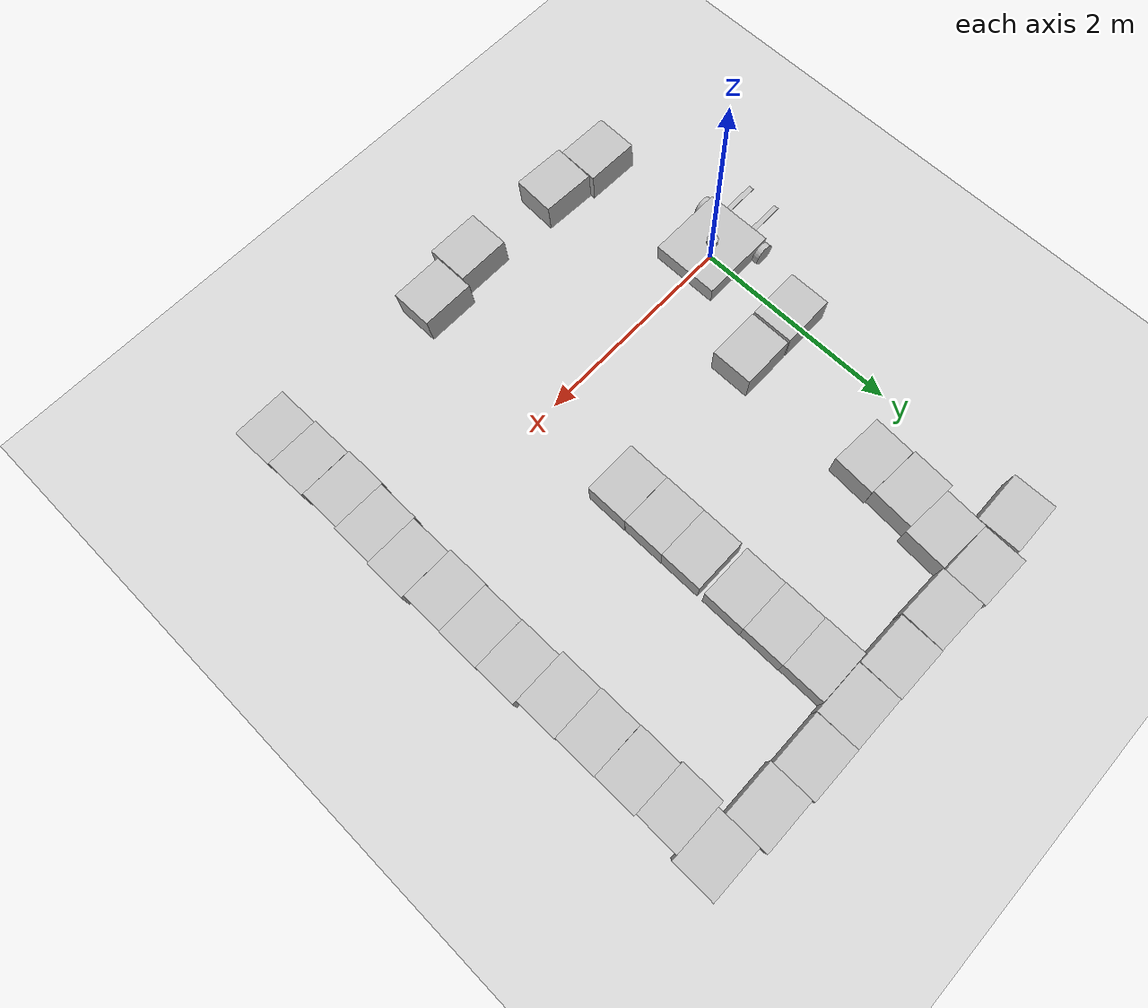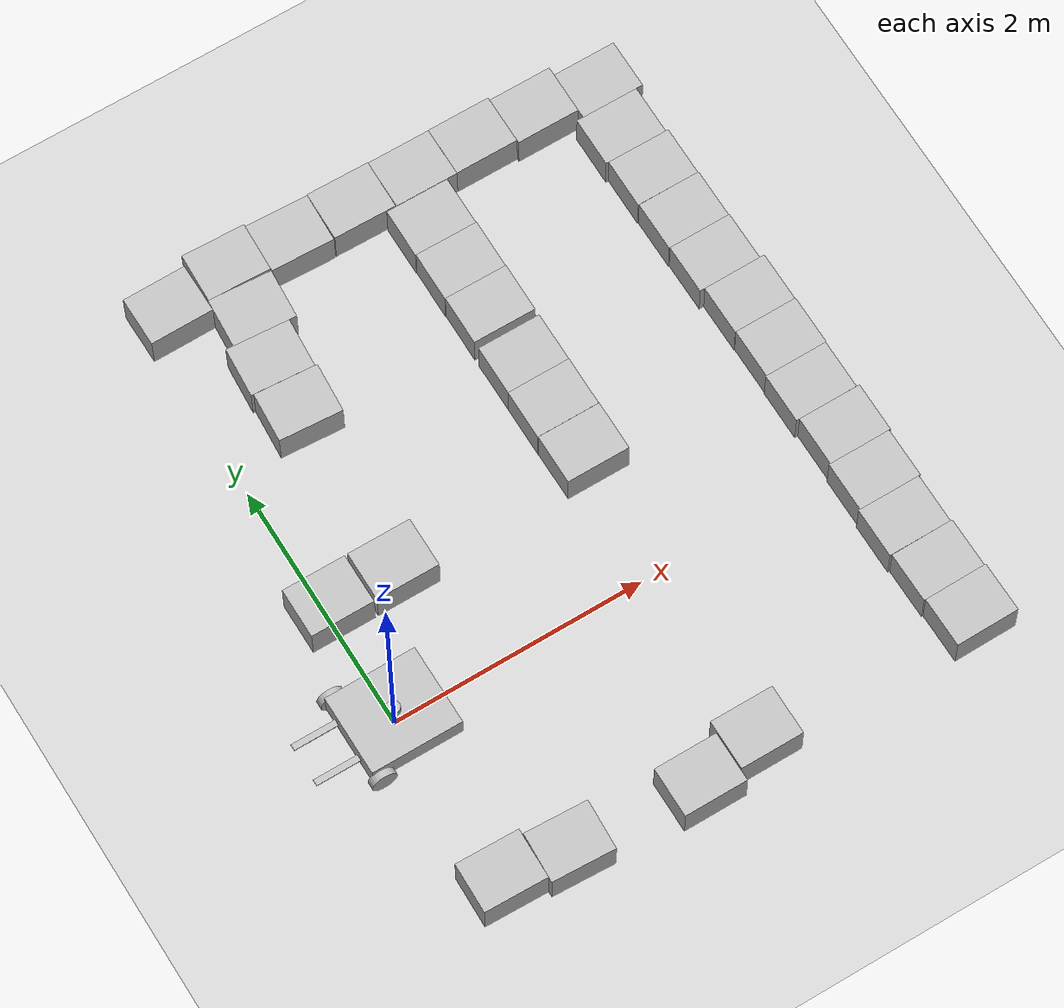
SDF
<sdf version="1.7">
 <world name="default">
  <model name="ground_plane">
   <static>1</static>
   <link name="link">
    <collision name="collision">
     <geometry><plane><normal>0 0 1</normal><size>100 100</size></plane></geometry>
     <surface><friction><ode><mu>100</mu><mu2>50</mu2></ode></friction></surface>
    </collision>
    <visual name="visual">
     <cast_shadows>0</cast_shadows>
     <geometry><plane><normal>0 0 1</normal><size>100 100</size></plane></geometry>
     <material>
      <script><uri>file://media/materials/scripts/gazebo.material</uri><name>Gazebo/Grey</name></script>
     </material>
    </visual>
   </link>
  </model>
  <model name="lgv">
   <link name="base_link">
    <inertial>
     <pose>0.006527 0 -0.002704 1.5708 -0 1.5708</pose>
     <mass>10.725</mass>
     <inertia>
      <ixx>0.476011</ixx>
      <ixy>1.73103e-18</ixy>
      <ixz>-2.64669e-18</ixz>
      <iyy>0.784563</iyy>
      <iyz>0.00611072</iyz>
      <izz>0.376002</izz>
     </inertia>
    </inertial>
    <collision name="base_link_collision"><geometry><box><size>0.72 0.64 0.18</size></box></geometry></collision>
    <collision name="base_link_fixed_joint_lump__front_caster_collision_1">
     <pose>0.14 0 -0.09 0 -0 0</pose>
     <geometry><sphere><radius>0.06</radius></sphere></geometry>
    </collision>
    <collision name="base_link_fixed_joint_lump__imu_link_collision_2">
     <pose>0 0 0.01 0 -0 0</pose>
     <geometry><box><size>0.1 0.1 0.1</size></box></geometry>
    </collision>
    <collision name="base_link_fixed_joint_lump__lidar_link_collision_3">
     <pose>0 0 0.12 0 -0 0</pose>
     <geometry><cylinder><length>0.055</length><radius>0.0508</radius></cylinder></geometry>
    </collision>
    <visual name="base_link_visual"><geometry><box><size>0.72 0.64 0.18</size></box></geometry></visual>
    <visual name="base_link_fixed_joint_lump__front_caster_visual_1">
     <pose>0.14 0 -0.09 0 -0 0</pose>
     <geometry><sphere><radius>0.06</radius></sphere></geometry>
    </visual>
    <visual name="base_link_fixed_joint_lump__dummyfork_l_link_visual_2">
     <pose>-0.54 0.15 0.01 0 -0 0</pose>
     <geometry><box><size>0.35 0.05 0.01</size></box></geometry>
    </visual>
    <visual name="base_link_fixed_joint_lump__dummyfork_r_link_visual_3">
     <pose>-0.54 -0.15 0.01 0 -0 0</pose>
     <geometry><box><size>0.35 0.05 0.01</size></box></geometry>
    </visual>
    <visual name="base_link_fixed_joint_lump__imu_link_visual_4">
     <pose>0 0 0.01 0 -0 0</pose>
     <geometry><box><size>0.1 0.1 0.1</size></box></geometry>
    </visual>
    <visual name="base_link_fixed_joint_lump__lidar_link_visual_5">
     <pose>0 0 0.12 0 -0 0</pose>
     <geometry><cylinder><length>0.055</length><radius>0.0508</radius></cylinder></geometry>
    </visual>
    <sensor name="imu_sensor" type="imu">
     <plugin name="imu_plugin" filename="libgazebo_ros_imu_sensor.so">
      <ros><remapping>~/out:=imu/data</remapping></ros>
      <initial_orientation_as_reference>0</initial_orientation_as_reference>
     </plugin>
     <always_on>1</always_on>
     <update_rate>100</update_rate>
     <visualize>1</visualize>
     <imu>
      <angular_velocity>
       <x>
        <noise type="gaussian">
         <mean>0</mean>
         <stddev>0.0002</stddev>
         <bias_mean>7.5e-06</bias_mean>
         <bias_stddev>8e-07</bias_stddev>
        </noise>
       </x>
       <y>
        <noise type="gaussian">
         <mean>0</mean>
         <stddev>0.0002</stddev>
         <bias_mean>7.5e-06</bias_mean>
         <bias_stddev>8e-07</bias_stddev>
        </noise>
       </y>
       <z>
        <noise type="gaussian">
         <mean>0</mean>
         <stddev>0.0002</stddev>
         <bias_mean>7.5e-06</bias_mean>
         <bias_stddev>8e-07</bias_stddev>
        </noise>
       </z>
      </angular_velocity>
      <linear_acceleration>
       <x>
        <noise type="gaussian">
         <mean>0</mean>
         <stddev>0.017</stddev>
         <bias_mean>0.1</bias_mean>
         <bias_stddev>0.001</bias_stddev>
        </noise>
       </x>
       <y>
        <noise type="gaussian">
         <mean>0</mean>
         <stddev>0.017</stddev>
         <bias_mean>0.1</bias_mean>
         <bias_stddev>0.001</bias_stddev>
        </noise>
       </y>
       <z>
        <noise type="gaussian">
         <mean>0</mean>
         <stddev>0.017</stddev>
         <bias_mean>0.1</bias_mean>
         <bias_stddev>0.001</bias_stddev>
        </noise>
       </z>
      </linear_acceleration>
     </imu>
     <pose>0 0 0.01 0 -0 0</pose>
    </sensor>
    <sensor name="lidar" type="ray">
     <always_on>1</always_on>
     <visualize>1</visualize>
     <update_rate>5</update_rate>
     <ray>
      <scan>
       <horizontal>
        <samples>360</samples>
        <resolution>1</resolution>
        <min_angle>0</min_angle>
        <max_angle>6.28</max_angle>
       </horizontal>
       <vertical><samples>1</samples><min_angle>0</min_angle><max_angle>0</max_angle></vertical>
      </scan>
      <range><min>0.12</min><max>3.5</max><resolution>0.015</resolution></range>
      <noise><type>gaussian</type><mean>0</mean><stddev>0.01</stddev></noise>
     </ray>
     <plugin name="scan" filename="libgazebo_ros_ray_sensor.so">
      <ros><remapping>~/out:=scan</remapping></ros>
      <output_type>sensor_msgs/LaserScan</output_type>
      <frame_name>lidar_link</frame_name>
     </plugin>
     <pose>0 0 0.12 0 -0 0</pose>
    </sensor>
   </link>
   <joint name="drivewhl_l_joint" type="revolute">
    <pose relative_to="base_link">-0.295 0.345 -0.05 0 -0 0</pose>
    <parent>base_link</parent>
    <child>drivewhl_l_link</child>
    <axis>
     <xyz>0 1 0</xyz>
     <limit><lower>-1e+16</lower><upper>1e+16</upper></limit>
     <dynamics><spring_reference>0</spring_reference><spring_stiffness>0</spring_stiffness></dynamics>
    </axis>
   </joint>
   <link name="drivewhl_l_link">
    <pose relative_to="drivewhl_l_joint">0 0 0 0 -0 0</pose>
    <inertial>
     <pose>0 0 0 1.5708 -0 0</pose>
     <mass>5</mass>
     <inertia><ixx>0.014</ixx><ixy>0</ixy><ixz>0</ixz><iyy>0.014</iyy><iyz>0</iyz><izz>0.025</izz></inertia>
    </inertial>
    <collision name="drivewhl_l_link_collision">
     <pose>0 0 0 1.5708 -0 0</pose>
     <geometry><cylinder><length>0.06</length><radius>0.1</radius></cylinder></geometry>
    </collision>
    <visual name="drivewhl_l_link_visual">
     <pose>0 0 0 1.5708 -0 0</pose>
     <geometry><cylinder><length>0.06</length><radius>0.1</radius></cylinder></geometry>
    </visual>
   </link>
   <joint name="drivewhl_r_joint" type="revolute">
    <pose relative_to="base_link">-0.295 -0.345 -0.05 0 -0 0</pose>
    <parent>base_link</parent>
    <child>drivewhl_r_link</child>
    <axis>
     <xyz>0 1 0</xyz>
     <limit><lower>-1e+16</lower><upper>1e+16</upper></limit>
     <dynamics><spring_reference>0</spring_reference><spring_stiffness>0</spring_stiffness></dynamics>
    </axis>
   </joint>
   <link name="drivewhl_r_link">
    <pose relative_to="drivewhl_r_joint">0 0 0 0 -0 0</pose>
    <inertial>
     <pose>0 0 0 1.5708 -0 0</pose>
     <mass>5</mass>
     <inertia><ixx>0.014</ixx><ixy>0</ixy><ixz>0</ixz><iyy>0.014</iyy><iyz>0</iyz><izz>0.025</izz></inertia>
    </inertial>
    <collision name="drivewhl_r_link_collision">
     <pose>0 0 0 1.5708 -0 0</pose>
     <geometry><cylinder><length>0.06</length><radius>0.1</radius></cylinder></geometry>
    </collision>
    <visual name="drivewhl_r_link_visual">
     <pose>0 0 0 1.5708 -0 0</pose>
     <geometry><cylinder><length>0.06</length><radius>0.1</radius></cylinder></geometry>
    </visual>
   </link>
   <static>0</static>
   <plugin name="Plugin_diff_drive" filename="libgazebo_ros_diff_drive.so">
    <update_rate>30</update_rate>
    <command_topic>cmd_vel</command_topic>
    <left_joint>drivewhl_l_joint</left_joint>
    <right_joint>drivewhl_r_joint</right_joint>
    <wheel_separation>0.75</wheel_separation>
    <wheel_diameter>0.2</wheel_diameter>
    <max_wheel_torque>100</max_wheel_torque>
    <max_wheel_acceleration>1.5</max_wheel_acceleration>
    <publish_odom>1</publish_odom>
    <publish_odom_tf>0</publish_odom_tf>
    <publish_wheel_tf>0</publish_wheel_tf>
    <odometry_topic>odom</odometry_topic>
    <odometry_frame>odom</odometry_frame>
    <robot_base_frame>base_link</robot_base_frame>
    <odometry_source>1</odometry_source>
    <ros><remapping>odom:=wheel/odometry</remapping></ros>
   </plugin>
   <plugin name="Plugin_joint_state_publisher" filename="libgazebo_ros_joint_state_publisher.so">
    <ros><remapping>~/out:=joint_states</remapping></ros>
    <update_rate>30</update_rate>
    <joint_name>drivewhl_l_joint</joint_name>
    <joint_name>drivewhl_r_joint</joint_name>
   </plugin>
   <pose>-5.2e-05 9e-05 0.15 0 -0 0.001111</pose>
  </model>
  <model name="cardboard_box_clone">
   <pose>0.036399 0.936347 0.149 0 -0 0</pose>
   <link name="link">
    <inertial>
     <mass>2</mass>
     <inertia>
      <ixx>0.0416667</ixx>
      <ixy>0</ixy>
      <ixz>0</ixz>
      <iyy>0.0566667</iyy>
      <iyz>0</iyz>
      <izz>0.0683333</izz>
     </inertia>
    </inertial>
    <collision name="collision">
     <geometry><box><size>0.5 0.4 0.3</size></box></geometry>
     <surface>
      <friction><ode><mu>1</mu><mu2>1</mu2></ode></friction>
      <contact><ode><kp>1e+07</kp><kd>1</kd><min_depth>0.001</min_depth><max_vel>0.1</max_vel></ode></contact>
     </surface>
    </collision>
    <visual name="visual">
     <pose>0 0 -0.15 0 -0 0</pose>
     <geometry>
      <mesh><uri>model://cardboard_box/meshes/cardboard_box.dae</uri><scale>1.25932 1.00745 0.755591</scale></mesh>
     </geometry>
    </visual>
   </link>
  </model>
  <model name="cardboard_box_clone_0">
   <pose>0.559122 0.936933 0.149 0 -0 0</pose>
   <link name="link">
    <inertial>
     <mass>2</mass>
     <inertia>
      <ixx>0.0416667</ixx>
      <ixy>0</ixy>
      <ixz>0</ixz>
      <iyy>0.0566667</iyy>
      <iyz>0</iyz>
      <izz>0.0683333</izz>
     </inertia>
    </inertial>
    <collision name="collision">
     <geometry><box><size>0.5 0.4 0.3</size></box></geometry>
     <surface>
      <friction><ode><mu>1</mu><mu2>1</mu2></ode></friction>
      <contact><ode><kp>1e+07</kp><kd>1</kd><min_depth>0.001</min_depth><max_vel>0.1</max_vel></ode></contact>
     </surface>
    </collision>
    <visual name="visual">
     <pose>0 0 -0.15 0 -0 0</pose>
     <geometry>
      <mesh><uri>model://cardboard_box/meshes/cardboard_box.dae</uri><scale>1.25932 1.00745 0.755591</scale></mesh>
     </geometry>
    </visual>
   </link>
  </model>
  <model name="cardboard_box_clone_11">
   <pose>0.018354 -1.39647 0.149 0 0 -0.020636</pose>
   <link name="link">
    <inertial>
     <mass>2</mass>
     <inertia>
      <ixx>0.0416667</ixx>
      <ixy>0</ixy>
      <ixz>0</ixz>
      <iyy>0.0566667</iyy>
      <iyz>0</iyz>
      <izz>0.0683333</izz>
     </inertia>
    </inertial>
    <collision name="collision">
     <geometry><box><size>0.5 0.4 0.3</size></box></geometry>
     <surface>
      <friction><ode><mu>1</mu><mu2>1</mu2></ode></friction>
      <contact><ode><kp>1e+07</kp><kd>1</kd><min_depth>0.001</min_depth><max_vel>0.1</max_vel></ode></contact>
     </surface>
    </collision>
    <visual name="visual">
     <pose>0 0 -0.15 0 -0 0</pose>
     <geometry>
      <mesh><uri>model://cardboard_box/meshes/cardboard_box.dae</uri><scale>1.25932 1.00745 0.755591</scale></mesh>
     </geometry>
    </visual>
   </link>
  </model>
  <model name="cardboard_box_clone_12">
   <pose>0.520326 -1.45543 0.149 0 -0 -0.043511</pose>
   <link name="link">
    <inertial>
     <mass>2</mass>
     <inertia>
      <ixx>0.0416667</ixx>
      <ixy>0</ixy>
      <ixz>0</ixz>
      <iyy>0.0566667</iyy>
      <iyz>0</iyz>
      <izz>0.0683333</izz>
     </inertia>
    </inertial>
    <collision name="collision">
     <geometry><box><size>0.5 0.4 0.3</size></box></geometry>
     <surface>
      <friction><ode><mu>1</mu><mu2>1</mu2></ode></friction>
      <contact><ode><kp>1e+07</kp><kd>1</kd><min_depth>0.001</min_depth><max_vel>0.1</max_vel></ode></contact>
     </surface>
    </collision>
    <visual name="visual">
     <pose>0 0 -0.15 0 -0 0</pose>
     <geometry>
      <mesh><uri>model://cardboard_box/meshes/cardboard_box.dae</uri><scale>1.25932 1.00745 0.755591</scale></mesh>
     </geometry>
    </visual>
   </link>
  </model>
  <model name="cardboard_box_clone_13">
   <pose>3.77819 -1.43207 0.149 0 -0 0.012439</pose>
   <link name="link">
    <inertial>
     <mass>2</mass>
     <inertia>
      <ixx>0.0416667</ixx>
      <ixy>0</ixy>
      <ixz>0</ixz>
      <iyy>0.0566667</iyy>
      <iyz>0</iyz>
      <izz>0.0683333</izz>
     </inertia>
    </inertial>
    <collision name="collision">
     <geometry><box><size>0.5 0.4 0.3</size></box></geometry>
     <surface>
      <friction><ode><mu>1</mu><mu2>1</mu2></ode></friction>
      <contact><ode><kp>1e+07</kp><kd>1</kd><min_depth>0.001</min_depth><max_vel>0.1</max_vel></ode></contact>
     </surface>
    </collision>
    <visual name="visual">
     <pose>0 0 -0.15 0 -0 0</pose>
     <geometry>
      <mesh><uri>model://cardboard_box/meshes/cardboard_box.dae</uri><scale>1.25932 1.00745 0.755591</scale></mesh>
     </geometry>
    </visual>
   </link>
  </model>
  <model name="cardboard_box_clone_14">
   <pose>3.76152 -1.03289 0.149 0 -0 0.012281</pose>
   <link name="link">
    <inertial>
     <mass>2</mass>
     <inertia>
      <ixx>0.0416667</ixx>
      <ixy>0</ixy>
      <ixz>0</ixz>
      <iyy>0.0566667</iyy>
      <iyz>0</iyz>
      <izz>0.0683333</izz>
     </inertia>
    </inertial>
    <collision name="collision">
     <geometry><box><size>0.5 0.4 0.3</size></box></geometry>
     <surface>
      <friction><ode><mu>1</mu><mu2>1</mu2></ode></friction>
      <contact><ode><kp>1e+07</kp><kd>1</kd><min_depth>0.001</min_depth><max_vel>0.1</max_vel></ode></contact>
     </surface>
    </collision>
    <visual name="visual">
     <pose>0 0 -0.15 0 -0 0</pose>
     <geometry>
      <mesh><uri>model://cardboard_box/meshes/cardboard_box.dae</uri><scale>1.25932 1.00745 0.755591</scale></mesh>
     </geometry>
    </visual>
   </link>
  </model>
  <model name="cardboard_box_clone_15">
   <pose>3.74406 -0.631957 0.149 0 -0 0.004283</pose>
   <link name="link">
    <inertial>
     <mass>2</mass>
     <inertia>
      <ixx>0.0416667</ixx>
      <ixy>0</ixy>
      <ixz>0</ixz>
      <iyy>0.0566667</iyy>
      <iyz>0</iyz>
      <izz>0.0683333</izz>
     </inertia>
    </inertial>
    <collision name="collision">
     <geometry><box><size>0.5 0.4 0.3</size></box></geometry>
     <surface>
      <friction><ode><mu>1</mu><mu2>1</mu2></ode></friction>
      <contact><ode><kp>1e+07</kp><kd>1</kd><min_depth>0.001</min_depth><max_vel>0.1</max_vel></ode></contact>
     </surface>
    </collision>
    <visual name="visual">
     <pose>0 0 -0.15 0 -0 0</pose>
     <geometry>
      <mesh><uri>model://cardboard_box/meshes/cardboard_box.dae</uri><scale>1.25932 1.00745 0.755591</scale></mesh>
     </geometry>
    </visual>
   </link>
  </model>
  <model name="cardboard_box_clone_16">
   <pose>3.75626 -0.232679 0.149 0 -0 0.004095</pose>
   <link name="link">
    <inertial>
     <mass>2</mass>
     <inertia>
      <ixx>0.0416667</ixx>
      <ixy>0</ixy>
      <ixz>0</ixz>
      <iyy>0.0566667</iyy>
      <iyz>0</iyz>
      <izz>0.0683333</izz>
     </inertia>
    </inertial>
    <collision name="collision">
     <geometry><box><size>0.5 0.4 0.3</size></box></geometry>
     <surface>
      <friction><ode><mu>1</mu><mu2>1</mu2></ode></friction>
      <contact><ode><kp>1e+07</kp><kd>1</kd><min_depth>0.001</min_depth><max_vel>0.1</max_vel></ode></contact>
     </surface>
    </collision>
    <visual name="visual">
     <pose>0 0 -0.15 0 -0 0</pose>
     <geometry>
      <mesh><uri>model://cardboard_box/meshes/cardboard_box.dae</uri><scale>1.25932 1.00745 0.755591</scale></mesh>
     </geometry>
    </visual>
   </link>
  </model>
  <model name="cardboard_box_clone_17">
   <pose>3.76732 0.166908 0.149 0 -0 0.002251</pose>
   <link name="link">
    <inertial>
     <mass>2</mass>
     <inertia>
      <ixx>0.0416667</ixx>
      <ixy>0</ixy>
      <ixz>0</ixz>
      <iyy>0.0566667</iyy>
      <iyz>0</iyz>
      <izz>0.0683333</izz>
     </inertia>
    </inertial>
    <collision name="collision">
     <geometry><box><size>0.5 0.4 0.3</size></box></geometry>
     <surface>
      <friction><ode><mu>1</mu><mu2>1</mu2></ode></friction>
      <contact><ode><kp>1e+07</kp><kd>1</kd><min_depth>0.001</min_depth><max_vel>0.1</max_vel></ode></contact>
     </surface>
    </collision>
    <visual name="visual">
     <pose>0 0 -0.15 0 -0 0</pose>
     <geometry>
      <mesh><uri>model://cardboard_box/meshes/cardboard_box.dae</uri><scale>1.25932 1.00745 0.755591</scale></mesh>
     </geometry>
    </visual>
   </link>
  </model>
  <model name="cardboard_box_clone_18">
   <pose>3.74224 0.567245 0.149 0 -0 0.004212</pose>
   <link name="link">
    <inertial>
     <mass>2</mass>
     <inertia>
      <ixx>0.0416667</ixx>
      <ixy>0</ixy>
      <ixz>0</ixz>
      <iyy>0.0566667</iyy>
      <iyz>0</iyz>
      <izz>0.0683333</izz>
     </inertia>
    </inertial>
    <collision name="collision">
     <geometry><box><size>0.5 0.4 0.3</size></box></geometry>
     <surface>
      <friction><ode><mu>1</mu><mu2>1</mu2></ode></friction>
      <contact><ode><kp>1e+07</kp><kd>1</kd><min_depth>0.001</min_depth><max_vel>0.1</max_vel></ode></contact>
     </surface>
    </collision>
    <visual name="visual">
     <pose>0 0 -0.15 0 -0 0</pose>
     <geometry>
      <mesh><uri>model://cardboard_box/meshes/cardboard_box.dae</uri><scale>1.25932 1.00745 0.755591</scale></mesh>
     </geometry>
    </visual>
   </link>
  </model>
  <model name="cardboard_box_clone_19">
   <pose>3.74645 0.967047 0.149 0 -0 0.005082</pose>
   <link name="link">
    <inertial>
     <mass>2</mass>
     <inertia>
      <ixx>0.0416667</ixx>
      <ixy>0</ixy>
      <ixz>0</ixz>
      <iyy>0.0566667</iyy>
      <iyz>0</iyz>
      <izz>0.0683333</izz>
     </inertia>
    </inertial>
    <collision name="collision">
     <geometry><box><size>0.5 0.4 0.3</size></box></geometry>
     <surface>
      <friction><ode><mu>1</mu><mu2>1</mu2></ode></friction>
      <contact><ode><kp>1e+07</kp><kd>1</kd><min_depth>0.001</min_depth><max_vel>0.1</max_vel></ode></contact>
     </surface>
    </collision>
    <visual name="visual">
     <pose>0 0 -0.15 0 -0 0</pose>
     <geometry>
      <mesh><uri>model://cardboard_box/meshes/cardboard_box.dae</uri><scale>1.25932 1.00745 0.755591</scale></mesh>
     </geometry>
    </visual>
   </link>
  </model>
  <model name="cardboard_box_clone_20">
   <pose>3.73943 1.36651 0.149 0 -0 0.006875</pose>
   <link name="link">
    <inertial>
     <mass>2</mass>
     <inertia>
      <ixx>0.0416667</ixx>
      <ixy>0</ixy>
      <ixz>0</ixz>
      <iyy>0.0566667</iyy>
      <iyz>0</iyz>
      <izz>0.0683333</izz>
     </inertia>
    </inertial>
    <collision name="collision">
     <geometry><box><size>0.5 0.4 0.3</size></box></geometry>
     <surface>
      <friction><ode><mu>1</mu><mu2>1</mu2></ode></friction>
      <contact><ode><kp>1e+07</kp><kd>1</kd><min_depth>0.001</min_depth><max_vel>0.1</max_vel></ode></contact>
     </surface>
    </collision>
    <visual name="visual">
     <pose>0 0 -0.15 0 -0 0</pose>
     <geometry>
      <mesh><uri>model://cardboard_box/meshes/cardboard_box.dae</uri><scale>1.25932 1.00745 0.755591</scale></mesh>
     </geometry>
    </visual>
   </link>
  </model>
  <model name="cardboard_box_clone_21">
   <pose>2.14051 1.00085 0.149 0 -0 0</pose>
   <link name="link">
    <inertial>
     <mass>2</mass>
     <inertia>
      <ixx>0.0416667</ixx>
      <ixy>0</ixy>
      <ixz>0</ixz>
      <iyy>0.0566667</iyy>
      <iyz>0</iyz>
      <izz>0.0683333</izz>
     </inertia>
    </inertial>
    <collision name="collision">
     <geometry><box><size>0.5 0.4 0.3</size></box></geometry>
     <surface>
      <friction><ode><mu>1</mu><mu2>1</mu2></ode></friction>
      <contact><ode><kp>1e+07</kp><kd>1</kd><min_depth>0.001</min_depth><max_vel>0.1</max_vel></ode></contact>
     </surface>
    </collision>
    <visual name="visual">
     <pose>0 0 -0.15 0 -0 0</pose>
     <geometry>
      <mesh><uri>model://cardboard_box/meshes/cardboard_box.dae</uri><scale>1.25932 1.00745 0.755591</scale></mesh>
     </geometry>
    </visual>
   </link>
  </model>
  <model name="cardboard_box_clone_22">
   <pose>2.13804 1.4019 0.149 0 -0 0</pose>
   <link name="link">
    <inertial>
     <mass>2</mass>
     <inertia>
      <ixx>0.0416667</ixx>
      <ixy>0</ixy>
      <ixz>0</ixz>
      <iyy>0.0566667</iyy>
      <iyz>0</iyz>
      <izz>0.0683333</izz>
     </inertia>
    </inertial>
    <collision name="collision">
     <geometry><box><size>0.5 0.4 0.3</size></box></geometry>
     <surface>
      <friction><ode><mu>1</mu><mu2>1</mu2></ode></friction>
      <contact><ode><kp>1e+07</kp><kd>1</kd><min_depth>0.001</min_depth><max_vel>0.1</max_vel></ode></contact>
     </surface>
    </collision>
    <visual name="visual">
     <pose>0 0 -0.15 0 -0 0</pose>
     <geometry>
      <mesh><uri>model://cardboard_box/meshes/cardboard_box.dae</uri><scale>1.25932 1.00745 0.755591</scale></mesh>
     </geometry>
    </visual>
   </link>
  </model>
  <model name="cardboard_box_clone_23">
   <pose>2.13738 1.80107 0.149 0 -0 2e-06</pose>
   <link name="link">
    <inertial>
     <mass>2</mass>
     <inertia>
      <ixx>0.0416667</ixx>
      <ixy>0</ixy>
      <ixz>0</ixz>
      <iyy>0.0566667</iyy>
      <iyz>0</iyz>
      <izz>0.0683333</izz>
     </inertia>
    </inertial>
    <collision name="collision">
     <geometry><box><size>0.5 0.4 0.3</size></box></geometry>
     <surface>
      <friction><ode><mu>1</mu><mu2>1</mu2></ode></friction>
      <contact><ode><kp>1e+07</kp><kd>1</kd><min_depth>0.001</min_depth><max_vel>0.1</max_vel></ode></contact>
     </surface>
    </collision>
    <visual name="visual">
     <pose>0 0 -0.15 0 -0 0</pose>
     <geometry>
      <mesh><uri>model://cardboard_box/meshes/cardboard_box.dae</uri><scale>1.25932 1.00745 0.755591</scale></mesh>
     </geometry>
    </visual>
   </link>
  </model>
  <model name="cardboard_box_clone_24">
   <pose>2.13776 2.25388 0.149 -0 -0 -0.003863</pose>
   <link name="link">
    <inertial>
     <mass>2</mass>
     <inertia>
      <ixx>0.0416667</ixx>
      <ixy>0</ixy>
      <ixz>0</ixz>
      <iyy>0.0566667</iyy>
      <iyz>0</iyz>
      <izz>0.0683333</izz>
     </inertia>
    </inertial>
    <collision name="collision">
     <geometry><box><size>0.5 0.4 0.3</size></box></geometry>
     <surface>
      <friction><ode><mu>1</mu><mu2>1</mu2></ode></friction>
      <contact><ode><kp>1e+07</kp><kd>1</kd><min_depth>0.001</min_depth><max_vel>0.1</max_vel></ode></contact>
     </surface>
    </collision>
    <visual name="visual">
     <pose>0 0 -0.15 0 -0 0</pose>
     <geometry>
      <mesh><uri>model://cardboard_box/meshes/cardboard_box.dae</uri><scale>1.25932 1.00745 0.755591</scale></mesh>
     </geometry>
    </visual>
   </link>
  </model>
  <model name="cardboard_box_clone_25">
   <pose>2.13582 2.65368 0.149 0 -0 -0.004025</pose>
   <link name="link">
    <inertial>
     <mass>2</mass>
     <inertia>
      <ixx>0.0416667</ixx>
      <ixy>0</ixy>
      <ixz>0</ixz>
      <iyy>0.0566667</iyy>
      <iyz>0</iyz>
      <izz>0.0683333</izz>
     </inertia>
    </inertial>
    <collision name="collision">
     <geometry><box><size>0.5 0.4 0.3</size></box></geometry>
     <surface>
      <friction><ode><mu>1</mu><mu2>1</mu2></ode></friction>
      <contact><ode><kp>1e+07</kp><kd>1</kd><min_depth>0.001</min_depth><max_vel>0.1</max_vel></ode></contact>
     </surface>
    </collision>
    <visual name="visual">
     <pose>0 0 -0.15 0 -0 0</pose>
     <geometry>
      <mesh><uri>model://cardboard_box/meshes/cardboard_box.dae</uri><scale>1.25932 1.00745 0.755591</scale></mesh>
     </geometry>
    </visual>
   </link>
  </model>
  <model name="cardboard_box_clone_26">
   <pose>3.69918 1.76607 0.149 0 -0 0.006857</pose>
   <link name="link">
    <inertial>
     <mass>2</mass>
     <inertia>
      <ixx>0.0416667</ixx>
      <ixy>0</ixy>
      <ixz>0</ixz>
      <iyy>0.0566667</iyy>
      <iyz>0</iyz>
      <izz>0.0683333</izz>
     </inertia>
    </inertial>
    <collision name="collision">
     <geometry><box><size>0.5 0.4 0.3</size></box></geometry>
     <surface>
      <friction><ode><mu>1</mu><mu2>1</mu2></ode></friction>
      <contact><ode><kp>1e+07</kp><kd>1</kd><min_depth>0.001</min_depth><max_vel>0.1</max_vel></ode></contact>
     </surface>
    </collision>
    <visual name="visual">
     <pose>0 0 -0.15 0 -0 0</pose>
     <geometry>
      <mesh><uri>model://cardboard_box/meshes/cardboard_box.dae</uri><scale>1.25932 1.00745 0.755591</scale></mesh>
     </geometry>
    </visual>
   </link>
  </model>
  <model name="cardboard_box_clone_27">
   <pose>3.69113 2.16582 0.149 0 -0 0.006238</pose>
   <link name="link">
    <inertial>
     <mass>2</mass>
     <inertia>
      <ixx>0.0416667</ixx>
      <ixy>0</ixy>
      <ixz>0</ixz>
      <iyy>0.0566667</iyy>
      <iyz>0</iyz>
      <izz>0.0683333</izz>
     </inertia>
    </inertial>
    <collision name="collision">
     <geometry><box><size>0.5 0.4 0.3</size></box></geometry>
     <surface>
      <friction><ode><mu>1</mu><mu2>1</mu2></ode></friction>
      <contact><ode><kp>1e+07</kp><kd>1</kd><min_depth>0.001</min_depth><max_vel>0.1</max_vel></ode></contact>
     </surface>
    </collision>
    <visual name="visual">
     <pose>0 0 -0.15 0 -0 0</pose>
     <geometry>
      <mesh><uri>model://cardboard_box/meshes/cardboard_box.dae</uri><scale>1.25932 1.00745 0.755591</scale></mesh>
     </geometry>
    </visual>
   </link>
  </model>
  <model name="cardboard_box_clone_28">
   <pose>3.68402 2.56636 0.148999 1e-06 -0 -8e-05</pose>
   <link name="link">
    <inertial>
     <mass>2</mass>
     <inertia>
      <ixx>0.0416667</ixx>
      <ixy>0</ixy>
      <ixz>0</ixz>
      <iyy>0.0566667</iyy>
      <iyz>0</iyz>
      <izz>0.0683333</izz>
     </inertia>
    </inertial>
    <collision name="collision">
     <geometry><box><size>0.5 0.4 0.3</size></box></geometry>
     <surface>
      <friction><ode><mu>1</mu><mu2>1</mu2></ode></friction>
      <contact><ode><kp>1e+07</kp><kd>1</kd><min_depth>0.001</min_depth><max_vel>0.1</max_vel></ode></contact>
     </surface>
    </collision>
    <visual name="visual">
     <pose>0 0 -0.15 0 -0 0</pose>
     <geometry>
      <mesh><uri>model://cardboard_box/meshes/cardboard_box.dae</uri><scale>1.25932 1.00745 0.755591</scale></mesh>
     </geometry>
    </visual>
   </link>
  </model>
  <model name="cardboard_box_clone_29">
   <pose>3.66358 2.96578 0.149 -1e-06 0 -0.001748</pose>
   <link name="link">
    <inertial>
     <mass>2</mass>
     <inertia>
      <ixx>0.0416667</ixx>
      <ixy>0</ixy>
      <ixz>0</ixz>
      <iyy>0.0566667</iyy>
      <iyz>0</iyz>
      <izz>0.0683333</izz>
     </inertia>
    </inertial>
    <collision name="collision">
     <geometry><box><size>0.5 0.4 0.3</size></box></geometry>
     <surface>
      <friction><ode><mu>1</mu><mu2>1</mu2></ode></friction>
      <contact><ode><kp>1e+07</kp><kd>1</kd><min_depth>0.001</min_depth><max_vel>0.1</max_vel></ode></contact>
     </surface>
    </collision>
    <visual name="visual">
     <pose>0 0 -0.15 0 -0 0</pose>
     <geometry>
      <mesh><uri>model://cardboard_box/meshes/cardboard_box.dae</uri><scale>1.25932 1.00745 0.755591</scale></mesh>
     </geometry>
    </visual>
   </link>
  </model>
  <model name="cardboard_box_clone_30">
   <pose>3.71773 3.36529 0.149 -0 -0 -0.000217</pose>
   <link name="link">
    <inertial>
     <mass>2</mass>
     <inertia>
      <ixx>0.0416667</ixx>
      <ixy>0</ixy>
      <ixz>0</ixz>
      <iyy>0.0566667</iyy>
      <iyz>0</iyz>
      <izz>0.0683333</izz>
     </inertia>
    </inertial>
    <collision name="collision">
     <geometry><box><size>0.5 0.4 0.3</size></box></geometry>
     <surface>
      <friction><ode><mu>1</mu><mu2>1</mu2></ode></friction>
      <contact><ode><kp>1e+07</kp><kd>1</kd><min_depth>0.001</min_depth><max_vel>0.1</max_vel></ode></contact>
     </surface>
    </collision>
    <visual name="visual">
     <pose>0 0 -0.15 0 -0 0</pose>
     <geometry>
      <mesh><uri>model://cardboard_box/meshes/cardboard_box.dae</uri><scale>1.25932 1.00745 0.755591</scale></mesh>
     </geometry>
    </visual>
   </link>
  </model>
  <model name="cardboard_box_clone_1_clone">
   <pose>2.13326 3.05286 0.149 0 0 -0.003403</pose>
   <link name="link">
    <inertial>
     <mass>2</mass>
     <inertia>
      <ixx>0.0416667</ixx>
      <ixy>0</ixy>
      <ixz>0</ixz>
      <iyy>0.0566667</iyy>
      <iyz>0</iyz>
      <izz>0.0683333</izz>
     </inertia>
    </inertial>
    <collision name="collision">
     <geometry><box><size>0.5 0.4 0.3</size></box></geometry>
     <surface>
      <friction><ode><mu>1</mu><mu2>1</mu2></ode></friction>
      <contact><ode><kp>1e+07</kp><kd>1</kd><min_depth>0.001</min_depth><max_vel>0.1</max_vel></ode></contact>
     </surface>
    </collision>
    <visual name="visual">
     <pose>0 0 -0.15 0 -0 0</pose>
     <geometry>
      <mesh><uri>model://cardboard_box/meshes/cardboard_box.dae</uri><scale>1.25932 1.00745 0.755591</scale></mesh>
     </geometry>
    </visual>
   </link>
  </model>
  <model name="cardboard_box_clone_1_clone_0">
   <pose>2.21822 3.45523 0.149 0 -0 -0.00354</pose>
   <link name="link">
    <inertial>
     <mass>2</mass>
     <inertia>
      <ixx>0.0416667</ixx>
      <ixy>0</ixy>
      <ixz>0</ixz>
      <iyy>0.0566667</iyy>
      <iyz>0</iyz>
      <izz>0.0683333</izz>
     </inertia>
    </inertial>
    <collision name="collision">
     <geometry><box><size>0.5 0.4 0.3</size></box></geometry>
     <surface>
      <friction><ode><mu>1</mu><mu2>1</mu2></ode></friction>
      <contact><ode><kp>1e+07</kp><kd>1</kd><min_depth>0.001</min_depth><max_vel>0.1</max_vel></ode></contact>
     </surface>
    </collision>
    <visual name="visual">
     <pose>0 0 -0.15 0 -0 0</pose>
     <geometry>
      <mesh><uri>model://cardboard_box/meshes/cardboard_box.dae</uri><scale>1.25932 1.00745 0.755591</scale></mesh>
     </geometry>
    </visual>
   </link>
  </model>
  <model name="cardboard_box_clone_1_clone_1">
   <pose>2.71851 3.45625 0.149 0 -0 0.000271</pose>
   <link name="link">
    <inertial>
     <mass>2</mass>
     <inertia>
      <ixx>0.0416667</ixx>
      <ixy>0</ixy>
      <ixz>0</ixz>
      <iyy>0.0566667</iyy>
      <iyz>0</iyz>
      <izz>0.0683333</izz>
     </inertia>
    </inertial>
    <collision name="collision">
     <geometry><box><size>0.5 0.4 0.3</size></box></geometry>
     <surface>
      <friction><ode><mu>1</mu><mu2>1</mu2></ode></friction>
      <contact><ode><kp>1e+07</kp><kd>1</kd><min_depth>0.001</min_depth><max_vel>0.1</max_vel></ode></contact>
     </surface>
    </collision>
    <visual name="visual">
     <pose>0 0 -0.15 0 -0 0</pose>
     <geometry>
      <mesh><uri>model://cardboard_box/meshes/cardboard_box.dae</uri><scale>1.25932 1.00745 0.755591</scale></mesh>
     </geometry>
    </visual>
   </link>
  </model>
  <model name="cardboard_box_clone_1_clone_2">
   <pose>3.21838 3.43397 0.149 0 -0 0.000428</pose>
   <link name="link">
    <inertial>
     <mass>2</mass>
     <inertia>
      <ixx>0.0416667</ixx>
      <ixy>0</ixy>
      <ixz>0</ixz>
      <iyy>0.0566667</iyy>
      <iyz>0</iyz>
      <izz>0.0683333</izz>
     </inertia>
    </inertial>
    <collision name="collision">
     <geometry><box><size>0.5 0.4 0.3</size></box></geometry>
     <surface>
      <friction><ode><mu>1</mu><mu2>1</mu2></ode></friction>
      <contact><ode><kp>1e+07</kp><kd>1</kd><min_depth>0.001</min_depth><max_vel>0.1</max_vel></ode></contact>
     </surface>
    </collision>
    <visual name="visual">
     <pose>0 0 -0.15 0 -0 0</pose>
     <geometry>
      <mesh><uri>model://cardboard_box/meshes/cardboard_box.dae</uri><scale>1.25932 1.00745 0.755591</scale></mesh>
     </geometry>
    </visual>
   </link>
  </model>
  <model name="cardboard_box_clone_1_clone_3">
   <pose>1.7172 3.46415 0.149 0 0 -0.012989</pose>
   <link name="link">
    <inertial>
     <mass>2</mass>
     <inertia>
      <ixx>0.0416667</ixx>
      <ixy>0</ixy>
      <ixz>0</ixz>
      <iyy>0.0566667</iyy>
      <iyz>0</iyz>
      <izz>0.0683333</izz>
     </inertia>
    </inertial>
    <collision name="collision">
     <geometry><box><size>0.5 0.4 0.3</size></box></geometry>
     <surface>
      <friction><ode><mu>1</mu><mu2>1</mu2></ode></friction>
      <contact><ode><kp>1e+07</kp><kd>1</kd><min_depth>0.001</min_depth><max_vel>0.1</max_vel></ode></contact>
     </surface>
    </collision>
    <visual name="visual">
     <pose>0 0 -0.15 0 -0 0</pose>
     <geometry>
      <mesh><uri>model://cardboard_box/meshes/cardboard_box.dae</uri><scale>1.25932 1.00745 0.755591</scale></mesh>
     </geometry>
    </visual>
   </link>
  </model>
  <model name="cardboard_box_clone_1_clone_4">
   <pose>1.21319 3.47079 0.149 -0 -0 -0.032935</pose>
   <link name="link">
    <inertial>
     <mass>2</mass>
     <inertia>
      <ixx>0.0416667</ixx>
      <ixy>0</ixy>
      <ixz>0</ixz>
      <iyy>0.0566667</iyy>
      <iyz>0</iyz>
      <izz>0.0683333</izz>
     </inertia>
    </inertial>
    <collision name="collision">
     <geometry><box><size>0.5 0.4 0.3</size></box></geometry>
     <surface>
      <friction><ode><mu>1</mu><mu2>1</mu2></ode></friction>
      <contact><ode><kp>1e+07</kp><kd>1</kd><min_depth>0.001</min_depth><max_vel>0.1</max_vel></ode></contact>
     </surface>
    </collision>
    <visual name="visual">
     <pose>0 0 -0.15 0 -0 0</pose>
     <geometry>
      <mesh><uri>model://cardboard_box/meshes/cardboard_box.dae</uri><scale>1.25932 1.00745 0.755591</scale></mesh>
     </geometry>
    </visual>
   </link>
  </model>
  <model name="cardboard_box_clone_1_clone_5">
   <pose>0.714323 3.5052 0.149 0 0 -0.031599</pose>
   <link name="link">
    <inertial>
     <mass>2</mass>
     <inertia>
      <ixx>0.0416667</ixx>
      <ixy>0</ixy>
      <ixz>0</ixz>
      <iyy>0.0566667</iyy>
      <iyz>0</iyz>
      <izz>0.0683333</izz>
     </inertia>
    </inertial>
    <collision name="collision">
     <geometry><box><size>0.5 0.4 0.3</size></box></geometry>
     <surface>
      <friction><ode><mu>1</mu><mu2>1</mu2></ode></friction>
      <contact><ode><kp>1e+07</kp><kd>1</kd><min_depth>0.001</min_depth><max_vel>0.1</max_vel></ode></contact>
     </surface>
    </collision>
    <visual name="visual">
     <pose>0 0 -0.15 0 -0 0</pose>
     <geometry>
      <mesh><uri>model://cardboard_box/meshes/cardboard_box.dae</uri><scale>1.25932 1.00745 0.755591</scale></mesh>
     </geometry>
    </visual>
   </link>
  </model>
  <model name="cardboard_box_clone_1_clone_6">
   <pose>0.197888 3.43174 0.149 0 -0 0.008865</pose>
   <link name="link">
    <inertial>
     <mass>2</mass>
     <inertia>
      <ixx>0.0416667</ixx>
      <ixy>0</ixy>
      <ixz>0</ixz>
      <iyy>0.0566667</iyy>
      <iyz>0</iyz>
      <izz>0.0683333</izz>
     </inertia>
    </inertial>
    <collision name="collision">
     <geometry><box><size>0.5 0.4 0.3</size></box></geometry>
     <surface>
      <friction><ode><mu>1</mu><mu2>1</mu2></ode></friction>
      <contact><ode><kp>1e+07</kp><kd>1</kd><min_depth>0.001</min_depth><max_vel>0.1</max_vel></ode></contact>
     </surface>
    </collision>
    <visual name="visual">
     <pose>0 0 -0.15 0 -0 0</pose>
     <geometry>
      <mesh><uri>model://cardboard_box/meshes/cardboard_box.dae</uri><scale>1.25932 1.00745 0.755591</scale></mesh>
     </geometry>
    </visual>
   </link>
  </model>
  <model name="cardboard_box_clone_1_clone_51">
   <pose>1.52824 -1.51328 0.149 0 -0 0.001316</pose>
   <link name="link">
    <inertial>
     <mass>2</mass>
     <inertia>
      <ixx>0.0416667</ixx>
      <ixy>0</ixy>
      <ixz>0</ixz>
      <iyy>0.0566667</iyy>
      <iyz>0</iyz>
      <izz>0.0683333</izz>
     </inertia>
    </inertial>
    <collision name="collision">
     <geometry><box><size>0.5 0.4 0.3</size></box></geometry>
     <surface>
      <friction><ode><mu>1</mu><mu2>1</mu2></ode></friction>
      <contact><ode><kp>1e+07</kp><kd>1</kd><min_depth>0.001</min_depth><max_vel>0.1</max_vel></ode></contact>
     </surface>
    </collision>
    <visual name="visual">
     <pose>0 0 -0.15 0 -0 0</pose>
     <geometry>
      <mesh><uri>model://cardboard_box/meshes/cardboard_box.dae</uri><scale>1.25932 1.00745 0.755591</scale></mesh>
     </geometry>
    </visual>
   </link>
  </model>
  <model name="cardboard_box_clone_1_clone_52">
   <pose>2.03586 -1.42195 0.149 0 0 -0.000102</pose>
   <link name="link">
    <inertial>
     <mass>2</mass>
     <inertia>
      <ixx>0.0416667</ixx>
      <ixy>0</ixy>
      <ixz>0</ixz>
      <iyy>0.0566667</iyy>
      <iyz>0</iyz>
      <izz>0.0683333</izz>
     </inertia>
    </inertial>
    <collision name="collision">
     <geometry><box><size>0.5 0.4 0.3</size></box></geometry>
     <surface>
      <friction><ode><mu>1</mu><mu2>1</mu2></ode></friction>
      <contact><ode><kp>1e+07</kp><kd>1</kd><min_depth>0.001</min_depth><max_vel>0.1</max_vel></ode></contact>
     </surface>
    </collision>
    <visual name="visual">
     <pose>0 0 -0.15 0 -0 0</pose>
     <geometry>
      <mesh><uri>model://cardboard_box/meshes/cardboard_box.dae</uri><scale>1.25932 1.00745 0.755591</scale></mesh>
     </geometry>
    </visual>
   </link>
  </model>
  <model name="cardboard_box_clone_1_clone_54">
   <pose>0.599929 2.30265 0.149 0 0 -0.063151</pose>
   <link name="link">
    <inertial>
     <mass>2</mass>
     <inertia>
      <ixx>0.0416667</ixx>
      <ixy>0</ixy>
      <ixz>0</ixz>
      <iyy>0.0566667</iyy>
      <iyz>0</iyz>
      <izz>0.0683333</izz>
     </inertia>
    </inertial>
    <collision name="collision">
     <geometry><box><size>0.5 0.4 0.3</size></box></geometry>
     <surface>
      <friction><ode><mu>1</mu><mu2>1</mu2></ode></friction>
      <contact><ode><kp>1e+07</kp><kd>1</kd><min_depth>0.001</min_depth><max_vel>0.1</max_vel></ode></contact>
     </surface>
    </collision>
    <visual name="visual">
     <pose>0 0 -0.15 0 -0 0</pose>
     <geometry>
      <mesh><uri>model://cardboard_box/meshes/cardboard_box.dae</uri><scale>1.25932 1.00745 0.755591</scale></mesh>
     </geometry>
    </visual>
   </link>
  </model>
  <model name="cardboard_box_clone_1_clone_70">
   <pose>0.606982 2.70367 0.149 -0 -0 -0.064807</pose>
   <link name="link">
    <inertial>
     <mass>2</mass>
     <inertia>
      <ixx>0.0416667</ixx>
      <ixy>0</ixy>
      <ixz>0</ixz>
      <iyy>0.0566667</iyy>
      <iyz>0</iyz>
      <izz>0.0683333</izz>
     </inertia>
    </inertial>
    <collision name="collision">
     <geometry><box><size>0.5 0.4 0.3</size></box></geometry>
     <surface>
      <friction><ode><mu>1</mu><mu2>1</mu2></ode></friction>
      <contact><ode><kp>1e+07</kp><kd>1</kd><min_depth>0.001</min_depth><max_vel>0.1</max_vel></ode></contact>
     </surface>
    </collision>
    <visual name="visual">
     <pose>0 0 -0.15 0 -0 0</pose>
     <geometry>
      <mesh><uri>model://cardboard_box/meshes/cardboard_box.dae</uri><scale>1.25932 1.00745 0.755591</scale></mesh>
     </geometry>
    </visual>
   </link>
  </model>
  <model name="cardboard_box_clone_1_clone_71">
   <pose>0.691267 3.09887 0.149 0 0 -0.063358</pose>
   <link name="link">
    <inertial>
     <mass>2</mass>
     <inertia>
      <ixx>0.0416667</ixx>
      <ixy>0</ixy>
      <ixz>0</ixz>
      <iyy>0.0566667</iyy>
      <iyz>0</iyz>
      <izz>0.0683333</izz>
     </inertia>
    </inertial>
    <collision name="collision">
     <geometry><box><size>0.5 0.4 0.3</size></box></geometry>
     <surface>
      <friction><ode><mu>1</mu><mu2>1</mu2></ode></friction>
      <contact><ode><kp>1e+07</kp><kd>1</kd><min_depth>0.001</min_depth><max_vel>0.1</max_vel></ode></contact>
     </surface>
    </collision>
    <visual name="visual">
     <pose>0 0 -0.15 0 -0 0</pose>
     <geometry>
      <mesh><uri>model://cardboard_box/meshes/cardboard_box.dae</uri><scale>1.25932 1.00745 0.755591</scale></mesh>
     </geometry>
    </visual>
   </link>
  </model>
 </world>
</sdf>
